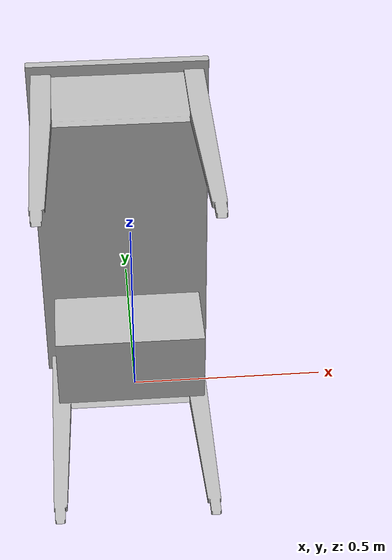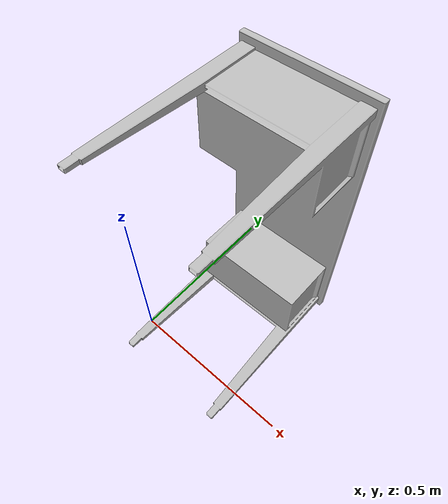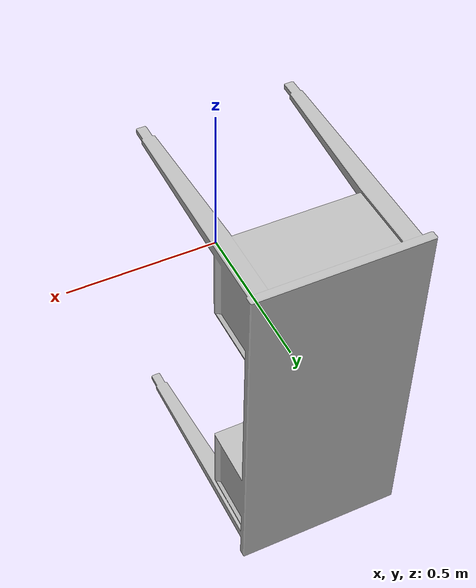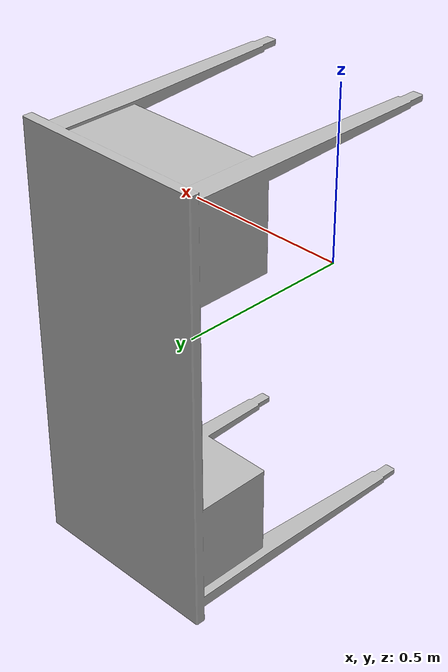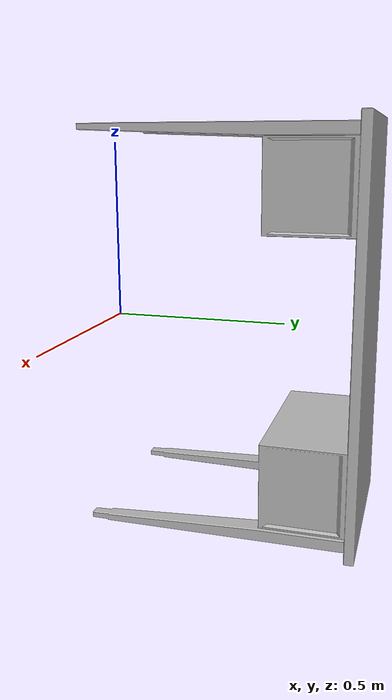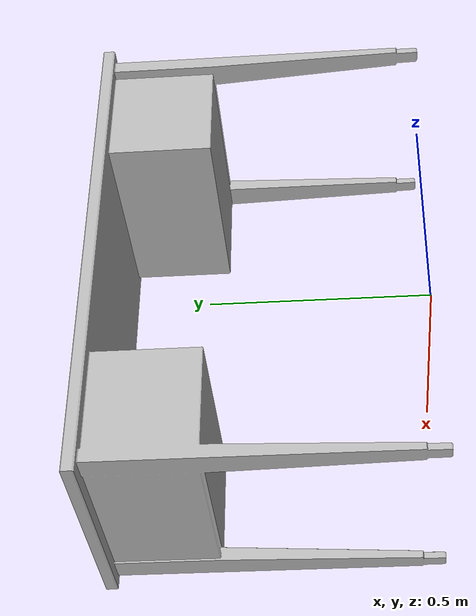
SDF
<?xml version="1.0" ?>
<sdf version="1.6">
  <model name="aws_robomaker_residential_ReadingDesk_01">
    <link name="link">
      <inertial>
        <mass>14.6</mass>
          <inertia>
            <ixx>0.78</ixx>
            <ixy>0</ixy>
            <ixz>0</ixz>
            <iyy>0.273</iyy>
            <iyz>0</iyz>
            <izz> 0.57375</izz>
          </inertia>
      </inertial>
      <collision name="collision">
        <geometry>
          <mesh>
<uri>model://aws_robomaker_residential_ReadingDesk_01/meshes/object.obj</uri>
            <scale>1 1 1</scale>
          </mesh>
        </geometry>
      </collision>
      <visual name="visual">
	    <geometry>
          <mesh>
<uri>model://aws_robomaker_residential_ReadingDesk_01/meshes/object.obj</uri>
          </mesh>
        </geometry>
      <meta> <layer> 1 </layer></meta>
</visual>
    </link>
  </model>
</sdf>
